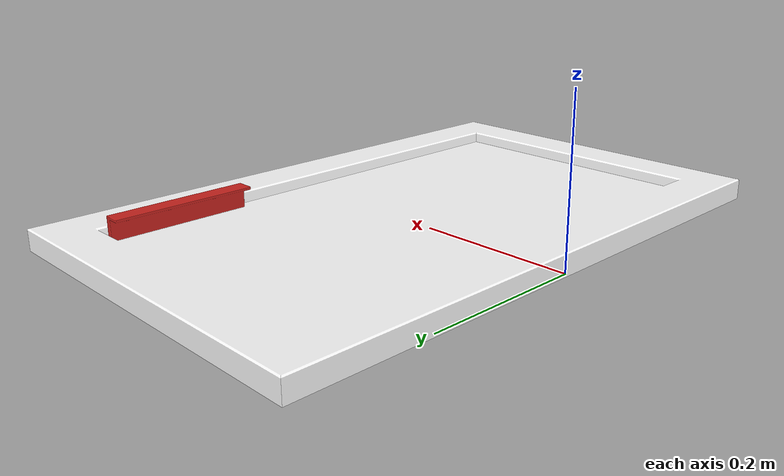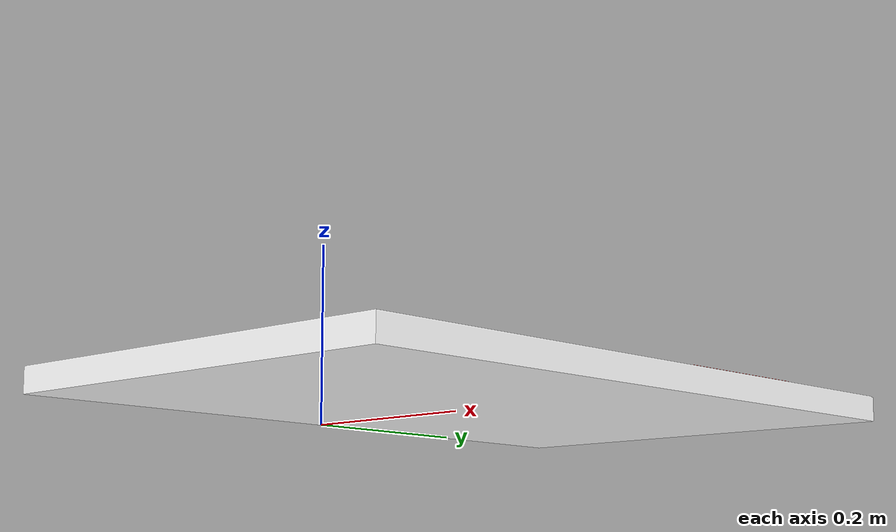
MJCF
<mujoco model="Cabinet_07bf9f23">
  <compiler autolimits="true" boundmass="0.01" angle="radian"/>
  <default>
    <default class="/">
      <default class="__VISUAL_MJT__">
        <geom contype="0" conaffinity="0" group="0"/>
      </default>
      <default class="__STRUCTURAL_MJT__">
        <geom contype="8" conaffinity="15" group="4" friction="0.90000000000000002 0.90000000000000002 0.001" solref="0.025000000000000001 1" solimp="0.998 0.998 0.001"/>
      </default>
      <default class="__DYNAMIC_MJT__">
        <geom contype="1" conaffinity="15" group="4" friction="0.90000000000000002 0.90000000000000002 0.001" solref="0.025000000000000001 1" solimp="0.998 0.998 0.001"/>
      </default>
    </default>
  </default>
  <asset>
    <material name="material_WhiteWoodClean" class="/" specular="0.5" shininess="0.5" rgba="1 1 1 1"/>
    <mesh name="Cabinet_07bf9f23_Mesh_01_9f0bd300" class="/" file="Cabinet_07bf9f23_Mesh_01_9f0bd300/Cabinet_07bf9f23_Mesh_01_9f0bd300.obj" scale="1 1 1" inertia="legacy"/>
    <texture name="HammeredMetal_AlbedoTransparency_2" type="2d" file="HammeredMetal_AlbedoTransparency.png"/>
    <material name="material_HammeredMetal_AlbedoTransparency_2" class="/" texture="HammeredMetal_AlbedoTransparency_2" specular="0.5" shininess="0.5" rgba="1 0.93407709999999999 0.81617649999999997 1"/>
    <mesh name="Cabinet_07bf9f23_handle_3_178mm_01_53ec29dd" class="/" file="Cabinet_07bf9f23_handle_3_178mm_01_53ec29dd/Cabinet_07bf9f23_handle_3_178mm_01_53ec29dd.obj" scale="1 1 1" inertia="legacy"/>
  </asset>
  <worldbody>
    <body name="Cabinet_07bf9f23">
      <body name="Cabinet_07bf9f23_Mesh_01_9f0bd300" pos="-0 0 0" quat="1 0 0 0">
        <geom name="Cabinet_07bf9f23_Mesh_01_9f0bd300" class="__VISUAL_MJT__" type="mesh" material="material_WhiteWoodClean" mesh="Cabinet_07bf9f23_Mesh_01_9f0bd300"/>
        <joint name="Cabinet_07bf9f23_joint" class="/" type="hinge" pos="-0 0 0" axis="0 -1 0" stiffness="0" range="0 1.5707963267948966" damping="0.10000000000000001" frictionloss="0"/>
        <geom name="Cabinet_07bf9f23_Mesh_01_9f0bd300_PrimitiveCollider_0" class="__DYNAMIC_MJT__" type="box" size="0.23500038683414459 0.37500020861625671 0.013550043106079102" rgba="0 1 0 1" pos="0.23000001907348633 0 0.013550043106079102" quat="0 1 0 0"/>
        <body name="Cabinet_07bf9f23_handle_3_178mm_01_53ec29dd" pos="0.39739990234375 0.22200003266334534 0.0099999904632568359" quat="0.70710678118654757 0 0 0.70710678118654746">
          <geom name="Cabinet_07bf9f23_handle_3_178mm_01_53ec29dd" class="__VISUAL_MJT__" type="mesh" material="material_HammeredMetal_AlbedoTransparency_2" mesh="Cabinet_07bf9f23_handle_3_178mm_01_53ec29dd"/>
          <geom name="Cabinet_07bf9f23_handle_3_178mm_01_53ec29dd_PrimitiveCollider_0" class="__DYNAMIC_MJT__" type="box" size="0.088752105832099915 0.0035549125168472528 0.016431529074907303" rgba="0 1 0 1" pos="-0 0 0.016289949417114258" quat="0 1 0 0"/>
          <geom name="Cabinet_07bf9f23_handle_3_178mm_01_53ec29dd_PrimitiveCollider_1" class="__DYNAMIC_MJT__" type="box" size="0.088752105832099915 0.0077598155476152897 0.0019227256998419762" rgba="0 1 0 1" pos="-6.7262817537994124e-10 0.011284829117357731 0.030798912048339844" quat="0 1 0 0"/>
        </body>
      </body>
    </body>
  </worldbody>
  <contact>
    <exclude name="//unnamed_contact_0" body1="Cabinet_07bf9f23_Mesh_01_9f0bd300" body2="Cabinet_07bf9f23_handle_3_178mm_01_53ec29dd"/>
  </contact>
</mujoco>
